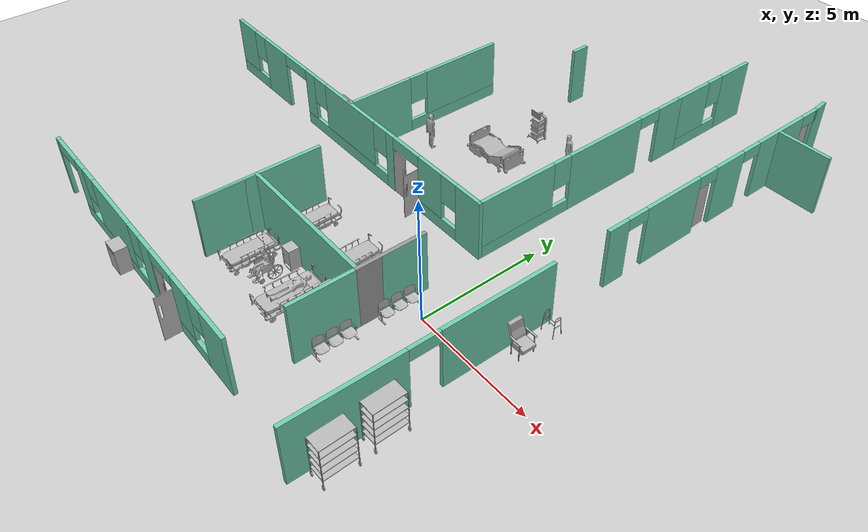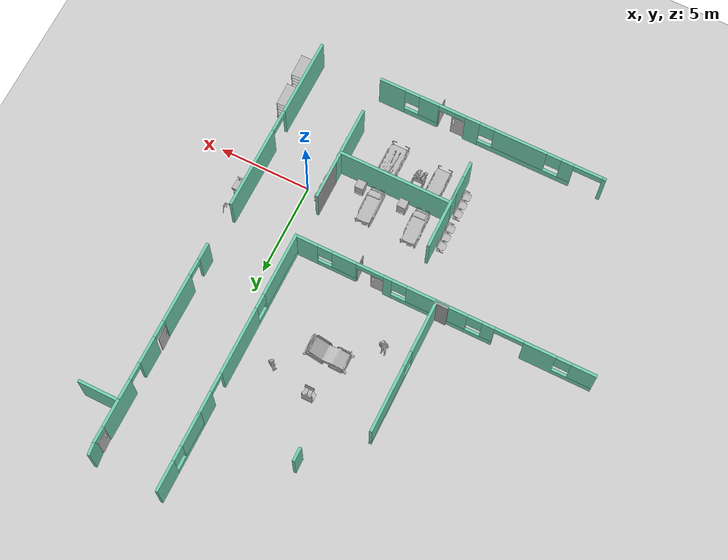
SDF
<sdf version="1.6">
 <world name="default">
  <model name="ground_plane">
   <static>1</static>
   <link name="link">
    <collision name="collision">
     <geometry><plane><normal>0 0 1</normal><size>100 100</size></plane></geometry>
     <surface><friction><ode><mu>100</mu><mu2>50</mu2></ode></friction></surface>
    </collision>
    <visual name="visual">
     <cast_shadows>0</cast_shadows>
     <geometry><plane><normal>0 0 1</normal><size>100 100</size></plane></geometry>
     <material>
      <script><uri>file://media/materials/scripts/gazebo.material</uri><name>Gazebo/Grey</name></script>
     </material>
    </visual>
   </link>
  </model>
  <model name="Hospital_empty">
   <pose>0.7078 0.61575 0 0 -0 0</pose>
   <link name="Wall_13">
    <collision name="Wall_13_Collision">
     <geometry><box><size>0.75 0.15 2.5</size></box></geometry>
     <pose>0 0 1.25 0 -0 0</pose>
    </collision>
    <visual name="Wall_13_Visual">
     <pose>0 0 1.25 0 -0 0</pose>
     <geometry><box><size>0.75 0.15 2.5</size></box></geometry>
     <material>
      <script><uri>file://media/materials/scripts/gazebo.material</uri><name>Gazebo/Grey</name></script>
      <ambient>0.435294 0.796078 0.67451 1</ambient>
     </material>
    </visual>
    <pose>-6.851 12.478 0 0 0 -1.5708</pose>
   </link>
   <link name="Wall_17">
    <pose>-1.797 7.76299 0 0 0 -1.5708</pose>
    <visual name="Wall_17_Visual_0">
     <pose>-4.48744 0 1.25 0 -0 0</pose>
     <geometry><box><size>1.27512 0.15 2.5</size></box></geometry>
     <material>
      <script><uri>file://media/materials/scripts/gazebo.material</uri><name>Gazebo/Grey</name></script>
      <ambient>0.435294 0.796078 0.67451 1</ambient>
     </material>
    </visual>
    <collision name="Wall_17_Collision_0">
     <geometry><box><size>1.27512 0.15 2.5</size></box></geometry>
     <pose>-4.48744 0 1.25 0 -0 0</pose>
    </collision>
    <visual name="Wall_17_Visual_1">
     <pose>-1.00157 0 1.25 0 -0 0</pose>
     <geometry><box><size>3.65689 0.15 2.5</size></box></geometry>
     <material>
      <script><uri>file://media/materials/scripts/gazebo.material</uri><name>Gazebo/Grey</name></script>
      <ambient>0.435294 0.796078 0.67451 1</ambient>
     </material>
    </visual>
    <collision name="Wall_17_Collision_1">
     <geometry><box><size>3.65689 0.15 2.5</size></box></geometry>
     <pose>-1.00157 0 1.25 0 -0 0</pose>
    </collision>
    <visual name="Wall_17_Visual_2">
     <pose>2.97594 0 0.25 0 -0 0</pose>
     <geometry><box><size>4.29813 0.15 0.5</size></box></geometry>
     <material>
      <script><uri>file://media/materials/scripts/gazebo.material</uri><name>Gazebo/Grey</name></script>
      <ambient>0.435294 0.796078 0.67451 1</ambient>
     </material>
    </visual>
    <collision name="Wall_17_Collision_2">
     <geometry><box><size>4.29813 0.15 0.5</size></box></geometry>
     <pose>2.97594 0 0.25 0 -0 0</pose>
    </collision>
    <visual name="Wall_17_Visual_3">
     <pose>3.37594 0 1.5 0 -0 0</pose>
     <geometry><box><size>3.49813 0.15 2</size></box></geometry>
     <material>
      <script><uri>file://media/materials/scripts/gazebo.material</uri><name>Gazebo/Grey</name></script>
      <ambient>0.435294 0.796078 0.67451 1</ambient>
     </material>
    </visual>
    <collision name="Wall_17_Collision_3">
     <geometry><box><size>3.49813 0.15 2</size></box></geometry>
     <pose>3.37594 0 1.5 0 -0 0</pose>
    </collision>
    <visual name="Wall_17_Visual_4">
     <pose>1.22687 0 1.9 0 -0 0</pose>
     <geometry><box><size>0.8 0.15 1.2</size></box></geometry>
     <material>
      <script><uri>file://media/materials/scripts/gazebo.material</uri><name>Gazebo/Grey</name></script>
      <ambient>0.435294 0.796078 0.67451 1</ambient>
     </material>
    </visual>
    <collision name="Wall_17_Collision_4">
     <geometry><box><size>0.8 0.15 1.2</size></box></geometry>
     <pose>1.22687 0 1.9 0 -0 0</pose>
    </collision>
    <visual name="Wall_17_Visual_5">
     <pose>-3.33995 0 2.25 0 -0 0</pose>
     <geometry><box><size>1.01986 0.15 0.5</size></box></geometry>
     <material>
      <script><uri>file://media/materials/scripts/gazebo.material</uri><name>Gazebo/Grey</name></script>
      <ambient>0.435294 0.796078 0.67451 1</ambient>
     </material>
    </visual>
    <collision name="Wall_17_Collision_5">
     <geometry><box><size>1.01986 0.15 0.5</size></box></geometry>
     <pose>-3.33995 0 2.25 0 -0 0</pose>
    </collision>
   </link>
   <link name="Wall_18">
    <pose>-9.847 2.71299 0 0 -0 3.14159</pose>
    <visual name="Wall_18_Visual_0">
     <pose>-7.48508 0 1.25 0 -0 0</pose>
     <geometry><box><size>1.27984 0.15 2.5</size></box></geometry>
     <material>
      <script><uri>file://media/materials/scripts/gazebo.material</uri><name>Gazebo/Grey</name></script>
      <ambient>0.435294 0.796078 0.67451 1</ambient>
     </material>
    </visual>
    <collision name="Wall_18_Collision_0">
     <geometry><box><size>1.27984 0.15 2.5</size></box></geometry>
     <pose>-7.48508 0 1.25 0 -0 0</pose>
    </collision>
    <visual name="Wall_18_Visual_1">
     <pose>-2.99948 0 1.25 0 -0 0</pose>
     <geometry><box><size>0.447791 0.15 2.5</size></box></geometry>
     <material>
      <script><uri>file://media/materials/scripts/gazebo.material</uri><name>Gazebo/Grey</name></script>
      <ambient>0.435294 0.796078 0.67451 1</ambient>
     </material>
    </visual>
    <collision name="Wall_18_Collision_1">
     <geometry><box><size>0.447791 0.15 2.5</size></box></geometry>
     <pose>-2.99948 0 1.25 0 -0 0</pose>
    </collision>
    <visual name="Wall_18_Visual_2">
     <pose>5.13794 0 1.25 0 -0 0</pose>
     <geometry><box><size>1.70338 0.15 2.5</size></box></geometry>
     <material>
      <script><uri>file://media/materials/scripts/gazebo.material</uri><name>Gazebo/Grey</name></script>
      <ambient>0.435294 0.796078 0.67451 1</ambient>
     </material>
    </visual>
    <collision name="Wall_18_Collision_2">
     <geometry><box><size>1.70338 0.15 2.5</size></box></geometry>
     <pose>5.13794 0 1.25 0 -0 0</pose>
    </collision>
    <visual name="Wall_18_Visual_3">
     <pose>-5.78127 0 0.25 0 -0 0</pose>
     <geometry><box><size>2.12777 0.15 0.5</size></box></geometry>
     <material>
      <script><uri>file://media/materials/scripts/gazebo.material</uri><name>Gazebo/Grey</name></script>
      <ambient>0.435294 0.796078 0.67451 1</ambient>
     </material>
    </visual>
    <collision name="Wall_18_Collision_3">
     <geometry><box><size>2.12777 0.15 0.5</size></box></geometry>
     <pose>-5.78127 0 0.25 0 -0 0</pose>
    </collision>
    <visual name="Wall_18_Visual_4">
     <pose>-0.014485 0 0.25 0 -0 0</pose>
     <geometry><box><size>5.52221 0.15 0.5</size></box></geometry>
     <material>
      <script><uri>file://media/materials/scripts/gazebo.material</uri><name>Gazebo/Grey</name></script>
      <ambient>0.435294 0.796078 0.67451 1</ambient>
     </material>
    </visual>
    <collision name="Wall_18_Collision_4">
     <geometry><box><size>5.52221 0.15 0.5</size></box></geometry>
     <pose>-0.014485 0 0.25 0 -0 0</pose>
    </collision>
    <visual name="Wall_18_Visual_5">
     <pose>7.05731 0 0.25 0 -0 0</pose>
     <geometry><box><size>2.13537 0.15 0.5</size></box></geometry>
     <material>
      <script><uri>file://media/materials/scripts/gazebo.material</uri><name>Gazebo/Grey</name></script>
      <ambient>0.435294 0.796078 0.67451 1</ambient>
     </material>
    </visual>
    <collision name="Wall_18_Collision_5">
     <geometry><box><size>2.13537 0.15 0.5</size></box></geometry>
     <pose>7.05731 0 0.25 0 -0 0</pose>
    </collision>
    <visual name="Wall_18_Visual_6">
     <pose>-5.38127 0 1.5 0 -0 0</pose>
     <geometry><box><size>1.32777 0.15 2</size></box></geometry>
     <material>
      <script><uri>file://media/materials/scripts/gazebo.material</uri><name>Gazebo/Grey</name></script>
      <ambient>0.435294 0.796078 0.67451 1</ambient>
     </material>
    </visual>
    <collision name="Wall_18_Collision_6">
     <geometry><box><size>1.32777 0.15 2</size></box></geometry>
     <pose>-5.38127 0 1.5 0 -0 0</pose>
    </collision>
    <visual name="Wall_18_Visual_7">
     <pose>-5.38127 0 1.5 0 -0 0</pose>
     <geometry><box><size>1.32777 0.15 2</size></box></geometry>
     <material>
      <script><uri>file://media/materials/scripts/gazebo.material</uri><name>Gazebo/Grey</name></script>
      <ambient>0.435294 0.796078 0.67451 1</ambient>
     </material>
    </visual>
    <collision name="Wall_18_Collision_7">
     <geometry><box><size>1.32777 0.15 2</size></box></geometry>
     <pose>-5.38127 0 1.5 0 -0 0</pose>
    </collision>
    <visual name="Wall_18_Visual_8">
     <pose>-0.340807 0 1.5 0 -0 0</pose>
     <geometry><box><size>3.26957 0.15 2</size></box></geometry>
     <material>
      <script><uri>file://media/materials/scripts/gazebo.material</uri><name>Gazebo/Grey</name></script>
      <ambient>0.435294 0.796078 0.67451 1</ambient>
     </material>
    </visual>
    <collision name="Wall_18_Collision_8">
     <geometry><box><size>3.26957 0.15 2</size></box></geometry>
     <pose>-0.340807 0 1.5 0 -0 0</pose>
    </collision>
    <visual name="Wall_18_Visual_9">
     <pose>2.4203 0 1.5 0 -0 0</pose>
     <geometry><box><size>0.652644 0.15 2</size></box></geometry>
     <material>
      <script><uri>file://media/materials/scripts/gazebo.material</uri><name>Gazebo/Grey</name></script>
      <ambient>0.435294 0.796078 0.67451 1</ambient>
     </material>
    </visual>
    <collision name="Wall_18_Collision_9">
     <geometry><box><size>0.652644 0.15 2</size></box></geometry>
     <pose>2.4203 0 1.5 0 -0 0</pose>
    </collision>
    <visual name="Wall_18_Visual_10">
     <pose>2.4203 0 1.5 0 -0 0</pose>
     <geometry><box><size>0.652644 0.15 2</size></box></geometry>
     <material>
      <script><uri>file://media/materials/scripts/gazebo.material</uri><name>Gazebo/Grey</name></script>
      <ambient>0.435294 0.796078 0.67451 1</ambient>
     </material>
    </visual>
    <collision name="Wall_18_Collision_10">
     <geometry><box><size>0.652644 0.15 2</size></box></geometry>
     <pose>2.4203 0 1.5 0 -0 0</pose>
    </collision>
    <visual name="Wall_18_Visual_11">
     <pose>7.45731 0 1.5 0 -0 0</pose>
     <geometry><box><size>1.33537 0.15 2</size></box></geometry>
     <material>
      <script><uri>file://media/materials/scripts/gazebo.material</uri><name>Gazebo/Grey</name></script>
      <ambient>0.435294 0.796078 0.67451 1</ambient>
     </material>
    </visual>
    <collision name="Wall_18_Collision_11">
     <geometry><box><size>1.33537 0.15 2</size></box></geometry>
     <pose>7.45731 0 1.5 0 -0 0</pose>
    </collision>
    <visual name="Wall_18_Visual_12">
     <pose>-6.44515 0 1.9 0 -0 0</pose>
     <geometry><box><size>0.8 0.15 1.2</size></box></geometry>
     <material>
      <script><uri>file://media/materials/scripts/gazebo.material</uri><name>Gazebo/Grey</name></script>
      <ambient>0.435294 0.796078 0.67451 1</ambient>
     </material>
    </visual>
    <collision name="Wall_18_Collision_12">
     <geometry><box><size>0.8 0.15 1.2</size></box></geometry>
     <pose>-6.44515 0 1.9 0 -0 0</pose>
    </collision>
    <visual name="Wall_18_Visual_13">
     <pose>-2.37559 0 1.9 0 -0 0</pose>
     <geometry><box><size>0.8 0.15 1.2</size></box></geometry>
     <material>
      <script><uri>file://media/materials/scripts/gazebo.material</uri><name>Gazebo/Grey</name></script>
      <ambient>0.435294 0.796078 0.67451 1</ambient>
     </material>
    </visual>
    <collision name="Wall_18_Collision_13">
     <geometry><box><size>0.8 0.15 1.2</size></box></geometry>
     <pose>-2.37559 0 1.9 0 -0 0</pose>
    </collision>
    <visual name="Wall_18_Visual_14">
     <pose>6.38963 0 1.9 0 -0 0</pose>
     <geometry><box><size>0.8 0.15 1.2</size></box></geometry>
     <material>
      <script><uri>file://media/materials/scripts/gazebo.material</uri><name>Gazebo/Grey</name></script>
      <ambient>0.435294 0.796078 0.67451 1</ambient>
     </material>
    </visual>
    <collision name="Wall_18_Collision_14">
     <geometry><box><size>0.8 0.15 1.2</size></box></geometry>
     <pose>6.38963 0 1.9 0 -0 0</pose>
    </collision>
    <visual name="Wall_18_Visual_15">
     <pose>1.69398 0 1.9 0 -0 0</pose>
     <geometry><box><size>0.8 0.15 1.2</size></box></geometry>
     <material>
      <script><uri>file://media/materials/scripts/gazebo.material</uri><name>Gazebo/Grey</name></script>
      <ambient>0.435294 0.796078 0.67451 1</ambient>
     </material>
    </visual>
    <collision name="Wall_18_Collision_15">
     <geometry><box><size>0.8 0.15 1.2</size></box></geometry>
     <pose>1.69398 0 1.9 0 -0 0</pose>
    </collision>
    <visual name="Wall_18_Visual_16">
     <pose>-3.97038 0 2.25 0 -0 0</pose>
     <geometry><box><size>1.494 0.15 0.5</size></box></geometry>
     <material>
      <script><uri>file://media/materials/scripts/gazebo.material</uri><name>Gazebo/Grey</name></script>
      <ambient>0.435294 0.796078 0.67451 1</ambient>
     </material>
    </visual>
    <collision name="Wall_18_Collision_16">
     <geometry><box><size>1.494 0.15 0.5</size></box></geometry>
     <pose>-3.97038 0 2.25 0 -0 0</pose>
    </collision>
    <visual name="Wall_18_Visual_17">
     <pose>-3.97038 0 2.25 0 -0 0</pose>
     <geometry><box><size>1.494 0.15 0.5</size></box></geometry>
     <material>
      <script><uri>file://media/materials/scripts/gazebo.material</uri><name>Gazebo/Grey</name></script>
      <ambient>0.435294 0.796078 0.67451 1</ambient>
     </material>
    </visual>
    <collision name="Wall_18_Collision_17">
     <geometry><box><size>1.494 0.15 0.5</size></box></geometry>
     <pose>-3.97038 0 2.25 0 -0 0</pose>
    </collision>
    <visual name="Wall_18_Visual_18">
     <pose>3.51643 0 2.25 0 -0 0</pose>
     <geometry><box><size>1.53963 0.15 0.5</size></box></geometry>
     <material>
      <script><uri>file://media/materials/scripts/gazebo.material</uri><name>Gazebo/Grey</name></script>
      <ambient>0.435294 0.796078 0.67451 1</ambient>
     </material>
    </visual>
    <collision name="Wall_18_Collision_18">
     <geometry><box><size>1.53963 0.15 0.5</size></box></geometry>
     <pose>3.51643 0 2.25 0 -0 0</pose>
    </collision>
    <visual name="Wall_18_Visual_19">
     <pose>3.51643 0 2.25 0 -0 0</pose>
     <geometry><box><size>1.53963 0.15 0.5</size></box></geometry>
     <material>
      <script><uri>file://media/materials/scripts/gazebo.material</uri><name>Gazebo/Grey</name></script>
      <ambient>0.435294 0.796078 0.67451 1</ambient>
     </material>
    </visual>
    <collision name="Wall_18_Collision_19">
     <geometry><box><size>1.53963 0.15 0.5</size></box></geometry>
     <pose>3.51643 0 2.25 0 -0 0</pose>
    </collision>
   </link>
   <link name="Wall_22">
    <collision name="Wall_22_Collision">
     <geometry><box><size>0.75 0.15 2.5</size></box></geometry>
     <pose>0 0 1.25 0 -0 0</pose>
    </collision>
    <visual name="Wall_22_Visual">
     <pose>0 0 1.25 0 -0 0</pose>
     <geometry><box><size>0.75 0.15 2.5</size></box></geometry>
     <material>
      <script><uri>file://media/materials/scripts/gazebo.material</uri><name>Gazebo/Grey</name></script>
      <ambient>1 1 1 1</ambient>
     </material>
    </visual>
    <pose>-9.775 2.78799 0 0 -0 0</pose>
   </link>
   <link name="Wall_23">
    <pose>-9.475 6.33799 0 0 -0 1.5708</pose>
    <visual name="Wall_23_Visual_0">
     <pose>-2.20031 0 1.25 0 -0 0</pose>
     <geometry><box><size>2.84938 0.15 2.5</size></box></geometry>
     <material>
      <script><uri>file://media/materials/scripts/gazebo.material</uri><name>Gazebo/Grey</name></script>
      <ambient>0.435294 0.796078 0.67451 1</ambient>
     </material>
    </visual>
    <collision name="Wall_23_Collision_0">
     <geometry><box><size>2.84938 0.15 2.5</size></box></geometry>
     <pose>-2.20031 0 1.25 0 -0 0</pose>
    </collision>
    <visual name="Wall_23_Visual_1">
     <pose>1.42469 0 0.25 0 -0 0</pose>
     <geometry><box><size>4.40062 0.15 0.5</size></box></geometry>
     <material>
      <script><uri>file://media/materials/scripts/gazebo.material</uri><name>Gazebo/Grey</name></script>
      <ambient>0.435294 0.796078 0.67451 1</ambient>
     </material>
    </visual>
    <collision name="Wall_23_Collision_1">
     <geometry><box><size>4.40062 0.15 0.5</size></box></geometry>
     <pose>1.42469 0 0.25 0 -0 0</pose>
    </collision>
    <visual name="Wall_23_Visual_2">
     <pose>1.82469 0 1.5 0 -0 0</pose>
     <geometry><box><size>3.60062 0.15 2</size></box></geometry>
     <material>
      <script><uri>file://media/materials/scripts/gazebo.material</uri><name>Gazebo/Grey</name></script>
      <ambient>0.435294 0.796078 0.67451 1</ambient>
     </material>
    </visual>
    <collision name="Wall_23_Collision_2">
     <geometry><box><size>3.60062 0.15 2</size></box></geometry>
     <pose>1.82469 0 1.5 0 -0 0</pose>
    </collision>
    <visual name="Wall_23_Visual_3">
     <pose>-0.375624 0 1.9 0 -0 0</pose>
     <geometry><box><size>0.8 0.15 1.2</size></box></geometry>
     <material>
      <script><uri>file://media/materials/scripts/gazebo.material</uri><name>Gazebo/Grey</name></script>
      <ambient>0.435294 0.796078 0.67451 1</ambient>
     </material>
    </visual>
    <collision name="Wall_23_Collision_3">
     <geometry><box><size>0.8 0.15 1.2</size></box></geometry>
     <pose>-0.375624 0 1.9 0 -0 0</pose>
    </collision>
   </link>
   <link name="Wall_31">
    <pose>-8.05 -6.82701 0 0 -0 3.14159</pose>
    <visual name="Wall_31_Visual_0">
     <pose>-5.55699 0 1.25 0 -0 0</pose>
     <geometry><box><size>1.43602 0.15 2.5</size></box></geometry>
     <material>
      <script><uri>file://media/materials/scripts/gazebo.material</uri><name>Gazebo/Grey</name></script>
      <ambient>0.435294 0.796078 0.67451 1</ambient>
     </material>
    </visual>
    <collision name="Wall_31_Collision_0">
     <geometry><box><size>1.43602 0.15 2.5</size></box></geometry>
     <pose>-5.55699 0 1.25 0 -0 0</pose>
    </collision>
    <visual name="Wall_31_Visual_1">
     <pose>-1.06729 0 1.25 0 -0 0</pose>
     <geometry><box><size>0.804786 0.15 2.5</size></box></geometry>
     <material>
      <script><uri>file://media/materials/scripts/gazebo.material</uri><name>Gazebo/Grey</name></script>
      <ambient>0.435294 0.796078 0.67451 1</ambient>
     </material>
    </visual>
    <collision name="Wall_31_Collision_1">
     <geometry><box><size>0.804786 0.15 2.5</size></box></geometry>
     <pose>-1.06729 0 1.25 0 -0 0</pose>
    </collision>
    <visual name="Wall_31_Visual_2">
     <pose>6.1767 0 1.25 0 -0 0</pose>
     <geometry><box><size>0.196605 0.15 2.5</size></box></geometry>
     <material>
      <script><uri>file://media/materials/scripts/gazebo.material</uri><name>Gazebo/Grey</name></script>
      <ambient>0.435294 0.796078 0.67451 1</ambient>
     </material>
    </visual>
    <collision name="Wall_31_Collision_2">
     <geometry><box><size>0.196605 0.15 2.5</size></box></geometry>
     <pose>6.1767 0 1.25 0 -0 0</pose>
    </collision>
    <visual name="Wall_31_Visual_3">
     <pose>-3.8954 0 0.25 0 -0 0</pose>
     <geometry><box><size>1.88718 0.15 0.5</size></box></geometry>
     <material>
      <script><uri>file://media/materials/scripts/gazebo.material</uri><name>Gazebo/Grey</name></script>
      <ambient>0.435294 0.796078 0.67451 1</ambient>
     </material>
    </visual>
    <collision name="Wall_31_Collision_3">
     <geometry><box><size>1.88718 0.15 0.5</size></box></geometry>
     <pose>-3.8954 0 0.25 0 -0 0</pose>
    </collision>
    <visual name="Wall_31_Visual_4">
     <pose>1.93145 0 0.25 0 -0 0</pose>
     <geometry><box><size>5.19268 0.15 0.5</size></box></geometry>
     <material>
      <script><uri>file://media/materials/scripts/gazebo.material</uri><name>Gazebo/Grey</name></script>
      <ambient>0.435294 0.796078 0.67451 1</ambient>
     </material>
    </visual>
    <collision name="Wall_31_Collision_4">
     <geometry><box><size>5.19268 0.15 0.5</size></box></geometry>
     <pose>1.93145 0 0.25 0 -0 0</pose>
    </collision>
    <visual name="Wall_31_Visual_5">
     <pose>-3.49539 0 1.5 0 -0 0</pose>
     <geometry><box><size>1.08718 0.15 2</size></box></geometry>
     <material>
      <script><uri>file://media/materials/scripts/gazebo.material</uri><name>Gazebo/Grey</name></script>
      <ambient>0.435294 0.796078 0.67451 1</ambient>
     </material>
    </visual>
    <collision name="Wall_31_Collision_5">
     <geometry><box><size>1.08718 0.15 2</size></box></geometry>
     <pose>-3.49539 0 1.5 0 -0 0</pose>
    </collision>
    <visual name="Wall_31_Visual_6">
     <pose>-3.49539 0 1.5 0 -0 0</pose>
     <geometry><box><size>1.08718 0.15 2</size></box></geometry>
     <material>
      <script><uri>file://media/materials/scripts/gazebo.material</uri><name>Gazebo/Grey</name></script>
      <ambient>0.435294 0.796078 0.67451 1</ambient>
     </material>
    </visual>
    <collision name="Wall_31_Collision_6">
     <geometry><box><size>1.08718 0.15 2</size></box></geometry>
     <pose>-3.49539 0 1.5 0 -0 0</pose>
    </collision>
    <visual name="Wall_31_Visual_7">
     <pose>1.58719 0 1.5 0 -0 0</pose>
     <geometry><box><size>2.90417 0.15 2</size></box></geometry>
     <material>
      <script><uri>file://media/materials/scripts/gazebo.material</uri><name>Gazebo/Grey</name></script>
      <ambient>0.435294 0.796078 0.67451 1</ambient>
     </material>
    </visual>
    <collision name="Wall_31_Collision_7">
     <geometry><box><size>2.90417 0.15 2</size></box></geometry>
     <pose>1.58719 0 1.5 0 -0 0</pose>
    </collision>
    <visual name="Wall_31_Visual_8">
     <pose>4.18353 0 1.5 0 -0 0</pose>
     <geometry><box><size>0.688507 0.15 2</size></box></geometry>
     <material>
      <script><uri>file://media/materials/scripts/gazebo.material</uri><name>Gazebo/Grey</name></script>
      <ambient>0.435294 0.796078 0.67451 1</ambient>
     </material>
    </visual>
    <collision name="Wall_31_Collision_8">
     <geometry><box><size>0.688507 0.15 2</size></box></geometry>
     <pose>4.18353 0 1.5 0 -0 0</pose>
    </collision>
    <visual name="Wall_31_Visual_9">
     <pose>-4.43898 0 1.9 0 -0 0</pose>
     <geometry><box><size>0.8 0.15 1.2</size></box></geometry>
     <material>
      <script><uri>file://media/materials/scripts/gazebo.material</uri><name>Gazebo/Grey</name></script>
      <ambient>0.435294 0.796078 0.67451 1</ambient>
     </material>
    </visual>
    <collision name="Wall_31_Collision_9">
     <geometry><box><size>0.8 0.15 1.2</size></box></geometry>
     <pose>-4.43898 0 1.9 0 -0 0</pose>
    </collision>
    <visual name="Wall_31_Visual_10">
     <pose>-0.264895 0 1.9 0 -0 0</pose>
     <geometry><box><size>0.8 0.15 1.2</size></box></geometry>
     <material>
      <script><uri>file://media/materials/scripts/gazebo.material</uri><name>Gazebo/Grey</name></script>
      <ambient>0.435294 0.796078 0.67451 1</ambient>
     </material>
    </visual>
    <collision name="Wall_31_Collision_10">
     <geometry><box><size>0.8 0.15 1.2</size></box></geometry>
     <pose>-0.264895 0 1.9 0 -0 0</pose>
    </collision>
    <visual name="Wall_31_Visual_11">
     <pose>3.43928 0 1.9 0 -0 0</pose>
     <geometry><box><size>0.8 0.15 1.2</size></box></geometry>
     <material>
      <script><uri>file://media/materials/scripts/gazebo.material</uri><name>Gazebo/Grey</name></script>
      <ambient>0.435294 0.796078 0.67451 1</ambient>
     </material>
    </visual>
    <collision name="Wall_31_Collision_11">
     <geometry><box><size>0.8 0.15 1.2</size></box></geometry>
     <pose>3.43928 0 1.9 0 -0 0</pose>
    </collision>
    <visual name="Wall_31_Visual_12">
     <pose>-2.21074 0 2.25 0 -0 0</pose>
     <geometry><box><size>1.48212 0.15 0.5</size></box></geometry>
     <material>
      <script><uri>file://media/materials/scripts/gazebo.material</uri><name>Gazebo/Grey</name></script>
      <ambient>0.435294 0.796078 0.67451 1</ambient>
     </material>
    </visual>
    <collision name="Wall_31_Collision_12">
     <geometry><box><size>1.48212 0.15 0.5</size></box></geometry>
     <pose>-2.21074 0 2.25 0 -0 0</pose>
    </collision>
    <visual name="Wall_31_Visual_13">
     <pose>-2.21074 0 2.25 0 -0 0</pose>
     <geometry><box><size>1.48212 0.15 0.5</size></box></geometry>
     <material>
      <script><uri>file://media/materials/scripts/gazebo.material</uri><name>Gazebo/Grey</name></script>
      <ambient>0.435294 0.796078 0.67451 1</ambient>
     </material>
    </visual>
    <collision name="Wall_31_Collision_13">
     <geometry><box><size>1.48212 0.15 0.5</size></box></geometry>
     <pose>-2.21074 0 2.25 0 -0 0</pose>
    </collision>
    <visual name="Wall_31_Visual_14">
     <pose>5.30309 0 2.25 0 -0 0</pose>
     <geometry><box><size>1.55061 0.15 0.5</size></box></geometry>
     <material>
      <script><uri>file://media/materials/scripts/gazebo.material</uri><name>Gazebo/Grey</name></script>
      <ambient>0.435294 0.796078 0.67451 1</ambient>
     </material>
    </visual>
    <collision name="Wall_31_Collision_14">
     <geometry><box><size>1.55061 0.15 0.5</size></box></geometry>
     <pose>5.30309 0 2.25 0 -0 0</pose>
    </collision>
   </link>
   <link name="Wall_4">
    <pose>-1.797 14.863 0 0 0 -1.5708</pose>
    <visual name="Wall_4_Visual_0">
     <pose>-1.30929 0 1.25 0 -0 0</pose>
     <geometry><box><size>1.63142 0.15 2.5</size></box></geometry>
     <material>
      <script><uri>file://media/materials/scripts/gazebo.material</uri><name>Gazebo/Grey</name></script>
      <ambient>0.435294 0.796078 0.67451 1</ambient>
     </material>
    </visual>
    <collision name="Wall_4_Collision_0">
     <geometry><box><size>1.63142 0.15 2.5</size></box></geometry>
     <pose>-1.30929 0 1.25 0 -0 0</pose>
    </collision>
    <visual name="Wall_4_Visual_1">
     <pose>0.815712 0 0.25 0 -0 0</pose>
     <geometry><box><size>2.61857 0.15 0.5</size></box></geometry>
     <material>
      <script><uri>file://media/materials/scripts/gazebo.material</uri><name>Gazebo/Grey</name></script>
      <ambient>0.435294 0.796078 0.67451 1</ambient>
     </material>
    </visual>
    <collision name="Wall_4_Collision_1">
     <geometry><box><size>2.61857 0.15 0.5</size></box></geometry>
     <pose>0.815712 0 0.25 0 -0 0</pose>
    </collision>
    <visual name="Wall_4_Visual_2">
     <pose>1.21571 0 1.5 0 -0 0</pose>
     <geometry><box><size>1.81858 0.15 2</size></box></geometry>
     <material>
      <script><uri>file://media/materials/scripts/gazebo.material</uri><name>Gazebo/Grey</name></script>
      <ambient>0.435294 0.796078 0.67451 1</ambient>
     </material>
    </visual>
    <collision name="Wall_4_Collision_2">
     <geometry><box><size>1.81858 0.15 2</size></box></geometry>
     <pose>1.21571 0 1.5 0 -0 0</pose>
    </collision>
    <visual name="Wall_4_Visual_3">
     <pose>-0.093575 0 1.9 0 -0 0</pose>
     <geometry><box><size>0.8 0.15 1.2</size></box></geometry>
     <material>
      <script><uri>file://media/materials/scripts/gazebo.material</uri><name>Gazebo/Grey</name></script>
      <ambient>0.435294 0.796078 0.67451 1</ambient>
     </material>
    </visual>
    <collision name="Wall_4_Collision_3">
     <geometry><box><size>0.8 0.15 1.2</size></box></geometry>
     <pose>-0.093575 0 1.9 0 -0 0</pose>
    </collision>
   </link>
   <link name="Wall_58">
    <pose>1.92588 10.6481 0 0 -0 1.56411</pose>
    <visual name="Wall_58_Visual_0">
     <pose>-5.15743 0 1.25 0 -0 0</pose>
     <geometry><box><size>0.935146 0.15 2.5</size></box></geometry>
     <material>
      <script><uri>file://media/materials/scripts/gazebo.material</uri><name>Gazebo/Grey</name></script>
      <ambient>0.435294 0.796078 0.67451 1</ambient>
     </material>
    </visual>
    <collision name="Wall_58_Collision_0">
     <geometry><box><size>0.935146 0.15 2.5</size></box></geometry>
     <pose>-5.15743 0 1.25 0 -0 0</pose>
    </collision>
    <visual name="Wall_58_Visual_1">
     <pose>-2.46295 0 1.25 0 -0 0</pose>
     <geometry><box><size>2.6538 0.15 2.5</size></box></geometry>
     <material>
      <script><uri>file://media/materials/scripts/gazebo.material</uri><name>Gazebo/Grey</name></script>
      <ambient>0.435294 0.796078 0.67451 1</ambient>
     </material>
    </visual>
    <collision name="Wall_58_Collision_1">
     <geometry><box><size>2.6538 0.15 2.5</size></box></geometry>
     <pose>-2.46295 0 1.25 0 -0 0</pose>
    </collision>
    <visual name="Wall_58_Visual_2">
     <pose>0.505501 0 1.25 0 -0 0</pose>
     <geometry><box><size>1.48311 0.15 2.5</size></box></geometry>
     <material>
      <script><uri>file://media/materials/scripts/gazebo.material</uri><name>Gazebo/Grey</name></script>
      <ambient>0.435294 0.796078 0.67451 1</ambient>
     </material>
    </visual>
    <collision name="Wall_58_Collision_2">
     <geometry><box><size>1.48311 0.15 2.5</size></box></geometry>
     <pose>0.505501 0 1.25 0 -0 0</pose>
    </collision>
    <visual name="Wall_58_Visual_3">
     <pose>3.44758 0 1.25 0 -0 0</pose>
     <geometry><box><size>2.60106 0.15 2.5</size></box></geometry>
     <material>
      <script><uri>file://media/materials/scripts/gazebo.material</uri><name>Gazebo/Grey</name></script>
      <ambient>0.435294 0.796078 0.67451 1</ambient>
     </material>
    </visual>
    <collision name="Wall_58_Collision_3">
     <geometry><box><size>2.60106 0.15 2.5</size></box></geometry>
     <pose>3.44758 0 1.25 0 -0 0</pose>
    </collision>
    <visual name="Wall_58_Visual_4">
     <pose>-4.23985 0 2.25 0 -0 0</pose>
     <geometry><box><size>0.9 0.15 0.5</size></box></geometry>
     <material>
      <script><uri>file://media/materials/scripts/gazebo.material</uri><name>Gazebo/Grey</name></script>
      <ambient>0.435294 0.796078 0.67451 1</ambient>
     </material>
    </visual>
    <collision name="Wall_58_Collision_4">
     <geometry><box><size>0.9 0.15 0.5</size></box></geometry>
     <pose>-4.23985 0 2.25 0 -0 0</pose>
    </collision>
    <visual name="Wall_58_Visual_5">
     <pose>-0.686052 0 2.25 0 -0 0</pose>
     <geometry><box><size>0.9 0.15 0.5</size></box></geometry>
     <material>
      <script><uri>file://media/materials/scripts/gazebo.material</uri><name>Gazebo/Grey</name></script>
      <ambient>0.435294 0.796078 0.67451 1</ambient>
     </material>
    </visual>
    <collision name="Wall_58_Collision_5">
     <geometry><box><size>0.9 0.15 0.5</size></box></geometry>
     <pose>-0.686052 0 2.25 0 -0 0</pose>
    </collision>
    <visual name="Wall_58_Visual_6">
     <pose>1.69705 0 2.25 0 -0 0</pose>
     <geometry><box><size>0.9 0.15 0.5</size></box></geometry>
     <material>
      <script><uri>file://media/materials/scripts/gazebo.material</uri><name>Gazebo/Grey</name></script>
      <ambient>0.435294 0.796078 0.67451 1</ambient>
     </material>
    </visual>
    <collision name="Wall_58_Collision_6">
     <geometry><box><size>0.9 0.15 0.5</size></box></geometry>
     <pose>1.69705 0 2.25 0 -0 0</pose>
    </collision>
    <visual name="Wall_58_Visual_7">
     <pose>5.18656 0 2.25 0 -0 0</pose>
     <geometry><box><size>0.876889 0.15 0.5</size></box></geometry>
     <material>
      <script><uri>file://media/materials/scripts/gazebo.material</uri><name>Gazebo/Grey</name></script>
      <ambient>0.435294 0.796078 0.67451 1</ambient>
     </material>
    </visual>
    <collision name="Wall_58_Collision_7">
     <geometry><box><size>0.876889 0.15 0.5</size></box></geometry>
     <pose>5.18656 0 2.25 0 -0 0</pose>
    </collision>
   </link>
   <link name="Wall_59">
    <collision name="Wall_59_Collision">
     <geometry><box><size>0.777983 0.15 2.5</size></box></geometry>
     <pose>0 0 1.25 0 -0 0</pose>
    </collision>
    <visual name="Wall_59_Visual">
     <pose>0 0 1.25 0 -0 0</pose>
     <geometry><box><size>0.777983 0.15 2.5</size></box></geometry>
     <material>
      <script><uri>file://media/materials/scripts/gazebo.material</uri><name>Gazebo/Grey</name></script>
      <ambient>0.435294 0.796078 0.67451 1</ambient>
     </material>
    </visual>
    <pose>1.9315 16.5105 0 0 -0 1.67126</pose>
   </link>
   <link name="Wall_70">
    <pose>1.82005 -2.28205 0 0 0 -1.57938</pose>
    <visual name="Wall_70_Visual_0">
     <pose>-2.71953 0 1.25 0 -0 0</pose>
     <geometry><box><size>4.50523 0.15 2.5</size></box></geometry>
     <material>
      <script><uri>file://media/materials/scripts/gazebo.material</uri><name>Gazebo/Grey</name></script>
      <ambient>0.435294 0.796078 0.67451 1</ambient>
     </material>
    </visual>
    <collision name="Wall_70_Collision_0">
     <geometry><box><size>4.50523 0.15 2.5</size></box></geometry>
     <pose>-2.71953 0 1.25 0 -0 0</pose>
    </collision>
    <visual name="Wall_70_Visual_1">
     <pose>2.84817 0 1.25 0 -0 0</pose>
     <geometry><box><size>4.24795 0.15 2.5</size></box></geometry>
     <material>
      <script><uri>file://media/materials/scripts/gazebo.material</uri><name>Gazebo/Grey</name></script>
      <ambient>0.435294 0.796078 0.67451 1</ambient>
     </material>
    </visual>
    <collision name="Wall_70_Collision_1">
     <geometry><box><size>4.24795 0.15 2.5</size></box></geometry>
     <pose>2.84817 0 1.25 0 -0 0</pose>
    </collision>
    <visual name="Wall_70_Visual_2">
     <pose>0.128641 0 2.25 0 -0 0</pose>
     <geometry><box><size>1.19111 0.15 0.5</size></box></geometry>
     <material>
      <script><uri>file://media/materials/scripts/gazebo.material</uri><name>Gazebo/Grey</name></script>
      <ambient>0.435294 0.796078 0.67451 1</ambient>
     </material>
    </visual>
    <collision name="Wall_70_Collision_2">
     <geometry><box><size>1.19111 0.15 0.5</size></box></geometry>
     <pose>0.128641 0 2.25 0 -0 0</pose>
    </collision>
   </link>
   <link name="Wall_86">
    <collision name="Wall_86_Collision">
     <geometry><box><size>5 0.15 2.5</size></box></geometry>
     <pose>0 0 1.25 0 -0 0</pose>
    </collision>
    <visual name="Wall_86_Visual">
     <pose>0 0 1.25 0 -0 0</pose>
     <geometry><box><size>5 0.15 2.5</size></box></geometry>
     <material>
      <script><uri>file://media/materials/scripts/gazebo.material</uri><name>Gazebo/Grey</name></script>
      <ambient>0.435294 0.796078 0.67451 1</ambient>
     </material>
    </visual>
    <pose>-7.874 -2.18301 0 0 0 -1.5708</pose>
   </link>
   <link name="Wall_87">
    <collision name="Wall_87_Collision">
     <geometry><box><size>2.5 0.15 2.5</size></box></geometry>
     <pose>0 0 1.25 0 -0 0</pose>
    </collision>
    <visual name="Wall_87_Visual">
     <pose>0 0 1.25 0 -0 0</pose>
     <geometry><box><size>2.5 0.15 2.5</size></box></geometry>
     <material>
      <script><uri>file://media/materials/scripts/gazebo.material</uri><name>Gazebo/Grey</name></script>
      <ambient>0.435294 0.796078 0.67451 1</ambient>
     </material>
    </visual>
    <pose>-7.874 -3.43301 0 0 -0 1.5708</pose>
   </link>
   <link name="Wall_88">
    <collision name="Wall_88_Collision">
     <geometry><box><size>6.25 0.15 2.5</size></box></geometry>
     <pose>0 0 1.25 0 -0 0</pose>
    </collision>
    <visual name="Wall_88_Visual">
     <pose>0 0 1.25 0 -0 0</pose>
     <geometry><box><size>6.25 0.15 2.5</size></box></geometry>
     <material>
      <script><uri>file://media/materials/scripts/gazebo.material</uri><name>Gazebo/Grey</name></script>
      <ambient>0.435294 0.796078 0.67451 1</ambient>
     </material>
    </visual>
    <pose>-4.824 -2.25801 0 0 -0 0</pose>
   </link>
   <link name="Wall_89">
    <collision name="Wall_89_Collision">
     <geometry><box><size>2.75 0.15 2.5</size></box></geometry>
     <pose>0 0 1.25 0 -0 0</pose>
    </collision>
    <visual name="Wall_89_Visual">
     <pose>0 0 1.25 0 -0 0</pose>
     <geometry><box><size>2.75 0.15 2.5</size></box></geometry>
     <material>
      <script><uri>file://media/materials/scripts/gazebo.material</uri><name>Gazebo/Grey</name></script>
      <ambient>1 1 1 1</ambient>
     </material>
    </visual>
    <pose>-1.774 -0.958012 0 0 -0 1.5708</pose>
   </link>
   <link name="Wall_90">
    <collision name="Wall_90_Collision">
     <geometry><box><size>5.25 0.15 2.5</size></box></geometry>
     <pose>0 0 1.25 0 -0 0</pose>
    </collision>
    <visual name="Wall_90_Visual">
     <pose>0 0 1.25 0 -0 0</pose>
     <geometry><box><size>5.25 0.15 2.5</size></box></geometry>
     <material>
      <script><uri>file://media/materials/scripts/gazebo.material</uri><name>Gazebo/Grey</name></script>
      <ambient>0.435294 0.796078 0.67451 1</ambient>
     </material>
    </visual>
    <pose>-1.774 -2.20801 0 0 0 -1.5708</pose>
   </link>
   <link name="Wall_97">
    <collision name="Wall_97_Collision">
     <geometry><box><size>2.25 0.15 2.5</size></box></geometry>
     <pose>0 0 1.25 0 -0 0</pose>
    </collision>
    <visual name="Wall_97_Visual">
     <pose>0 0 1.25 0 -0 0</pose>
     <geometry><box><size>2.25 0.15 2.5</size></box></geometry>
     <material>
      <script><uri>file://media/materials/scripts/gazebo.material</uri><name>Gazebo/Grey</name></script>
      <ambient>0.435294 0.796078 0.67451 1</ambient>
     </material>
    </visual>
    <pose>3.002 13.938 0 0 -0 0</pose>
   </link>
   <static>1</static>
  </model>
  <model name="OpScrubs_2">
   <static>1</static>
   <link name="body">
    <visual name="visual">
     <geometry><mesh><uri>model://OpScrubs/meshes/OpScrubs.obj</uri></mesh></geometry>
    </visual>
    <collision name="collision">
     <geometry><mesh><uri>model://OpScrubs/meshes/OpScrubs_Col.obj</uri></mesh></geometry>
    </collision>
   </link>
   <pose>-7.29876 6.10915 0 0 0 -3.05914</pose>
  </model>
  <model name="OpScrubs_3">
   <static>1</static>
   <link name="body">
    <visual name="visual">
     <geometry><mesh><uri>model://OpScrubs/meshes/OpScrubs.obj</uri></mesh></geometry>
    </visual>
    <collision name="collision">
     <geometry><mesh><uri>model://OpScrubs/meshes/OpScrubs_Col.obj</uri></mesh></geometry>
    </collision>
   </link>
   <pose>-2.81913 9.28288 0 0 0 -0.380709</pose>
  </model>
  <model name="TrolleyBedPatient">
   <static>1</static>
   <link name="body">
    <visual name="visual">
     <geometry><mesh><uri>model://TrolleyBedPatient/meshes/TrolleyBedPatient.obj</uri></mesh></geometry>
    </visual>
    <collision name="collision">
     <geometry><mesh><uri>model://TrolleyBedPatient/meshes/TrolleyBedPatient.obj</uri></mesh></geometry>
    </collision>
   </link>
   <pose>-3.3154 -2.93022 0 0 -0 0</pose>
  </model>
  <model name="BedsideTable2">
   <static>1</static>
   <link name="body">
    <visual name="visual">
     <geometry><mesh><uri>model://BedsideTable2/meshes/BedsideTable2.obj</uri></mesh></geometry>
    </visual>
    <collision name="collision">
     <geometry><mesh><uri>model://BedsideTable2/meshes/BedsideTable2_Col.obj</uri></mesh></geometry>
    </collision>
   </link>
   <pose>-2.42002 -1.95338 0 0 -0 0</pose>
  </model>
  <model name="BedsideTable2_0">
   <static>1</static>
   <link name="body">
    <visual name="visual">
     <geometry><mesh><uri>model://BedsideTable2/meshes/BedsideTable2.obj</uri></mesh></geometry>
    </visual>
    <collision name="collision">
     <geometry><mesh><uri>model://BedsideTable2/meshes/BedsideTable2_Col.obj</uri></mesh></geometry>
    </collision>
   </link>
   <pose>-4.80174 -1.92772 0 0 -0 0</pose>
  </model>
  <model name="BedsideTable2_1">
   <static>1</static>
   <link name="body">
    <visual name="visual">
     <geometry><mesh><uri>model://BedsideTable2/meshes/BedsideTable2.obj</uri></mesh></geometry>
    </visual>
    <collision name="collision">
     <geometry><mesh><uri>model://BedsideTable2/meshes/BedsideTable2_Col.obj</uri></mesh></geometry>
    </collision>
   </link>
   <pose>-4.83302 -1.14148 0 0 -0 3.13773</pose>
  </model>
  <model name="BedsideTable2_2">
   <static>1</static>
   <link name="body">
    <visual name="visual">
     <geometry><mesh><uri>model://BedsideTable2/meshes/BedsideTable2.obj</uri></mesh></geometry>
    </visual>
    <collision name="collision">
     <geometry><mesh><uri>model://BedsideTable2/meshes/BedsideTable2_Col.obj</uri></mesh></geometry>
    </collision>
   </link>
   <pose>-2.45533 -1.12651 0 0 -0 3.1391</pose>
  </model>
  <model name="InstrumentCart1_clone_0">
   <static>1</static>
   <link name="body">
    <visual name="visual">
     <geometry><mesh><uri>model://InstrumentCart1/meshes/InstrumentCart1.obj</uri></mesh></geometry>
    </visual>
    <collision name="collision">
     <geometry><mesh><uri>model://InstrumentCart1/meshes/InstrumentCart1.obj</uri></mesh></geometry>
    </collision>
   </link>
   <pose>-5.03655 9.79948 0 0 -0 0</pose>
  </model>
  <model name="CGMClassic_1">
   <static>1</static>
   <link name="body">
    <visual name="visual">
     <geometry>
      <mesh><uri>model://CGMClassic/meshes/CGMClassic.obj</uri><scale>0.01 0.01 0.01</scale></mesh>
     </geometry>
    </visual>
    <collision name="collision">
     <geometry>
      <mesh><uri>model://CGMClassic/meshes/CGMClassic.obj</uri><scale>0.01 0.01 0.01</scale></mesh>
     </geometry>
    </collision>
   </link>
   <pose>-4.94329 7.52696 0 0 0 -1.57164</pose>
  </model>
  <model name="PatientWheelChair">
   <static>1</static>
   <link name="body">
    <visual name="visual">
     <geometry><mesh><uri>model://PatientWheelChair/meshes/PatientWheelChair.obj</uri></mesh></geometry>
    </visual>
    <collision name="collision">
     <geometry><mesh><uri>model://PatientWheelChair/meshes/PatientWheelChair_Col.obj</uri></mesh></geometry>
    </collision>
   </link>
   <pose>-4.93606 -2.9662 0 0 -0 0</pose>
  </model>
  <model name="Walker">
   <static>1</static>
   <link name="body">
    <visual name="visual"><geometry><mesh><uri>model://Walker/meshes/Walker.obj</uri></mesh></geometry></visual>
    <collision name="collision">
     <geometry><mesh><uri>model://Walker/meshes/Walker_Col.obj</uri></mesh></geometry>
    </collision>
   </link>
   <pose>-1.6099 -2.06022 0 0 -0 0</pose>
  </model>
  <model name="ElectronicsRecycling_1">
   <static>1</static>
   <link name="body">
    <visual name="visual">
     <geometry><mesh><uri>model://ElectronicsRecycling/meshes/bin.obj</uri></mesh></geometry>
    </visual>
    <collision name="collision">
     <geometry><mesh><uri>model://ElectronicsRecycling/meshes/bin.obj</uri></mesh></geometry>
    </collision>
   </link>
   <pose>-8.46388 -6.23746 0 0 -0 0</pose>
  </model>
  <model name="Walker_1">
   <static>1</static>
   <link name="body">
    <visual name="visual"><geometry><mesh><uri>model://Walker/meshes/Walker.obj</uri></mesh></geometry></visual>
    <collision name="collision">
     <geometry><mesh><uri>model://Walker/meshes/Walker_Col.obj</uri></mesh></geometry>
    </collision>
   </link>
   <pose>3.0232 2.90322 0 0 -0 0</pose>
  </model>
  <model name="VisitorChair_0">
   <static>1</static>
   <link name="body">
    <visual name="visual">
     <geometry><mesh><uri>model://VisitorChair/meshes/VisitorChair.obj</uri></mesh></geometry>
    </visual>
    <collision name="collision">
     <geometry><mesh><uri>model://VisitorChair/meshes/VisitorChair_Col.obj</uri></mesh></geometry>
    </collision>
   </link>
   <pose>3.0958 1.5779 0 0 -0 1.55163</pose>
  </model>
  <model name="OrangeDoors_0_clone_9">
   <static>1</static>
   <link name="body">
    <visual name="visual">
     <geometry><mesh><uri>model://OrangeDoors/meshes/door.obj</uri></mesh></geometry>
    </visual>
    <collision name="collision">
     <geometry><mesh><uri>model://OrangeDoors/meshes/door.obj</uri></mesh></geometry>
    </collision>
   </link>
   <pose>-5.50403 -6.25453 0 0 -0 0</pose>
  </model>
  <model name="OrangeDoors_0_clone_12">
   <static>1</static>
   <link name="body">
    <visual name="visual">
     <geometry><mesh><uri>model://OrangeDoors/meshes/door.obj</uri></mesh></geometry>
    </visual>
    <collision name="collision">
     <geometry><mesh><uri>model://OrangeDoors/meshes/door.obj</uri></mesh></geometry>
    </collision>
   </link>
   <pose>-5.57436 3.27957 0 0 -0 0</pose>
  </model>
  <model name="OrangeDoors_0_clone_clone">
   <static>1</static>
   <link name="body">
    <visual name="visual">
     <geometry><mesh><uri>model://OrangeDoors/meshes/door.obj</uri></mesh></geometry>
    </visual>
    <collision name="collision">
     <geometry><mesh><uri>model://OrangeDoors/meshes/door.obj</uri></mesh></geometry>
    </collision>
   </link>
   <pose>-4.4214 -6.54014 0 0 0 -1.53252</pose>
  </model>
  <model name="OrangeDoors_0_clone_clone_2">
   <static>1</static>
   <link name="body">
    <visual name="visual">
     <geometry><mesh><uri>model://OrangeDoors/meshes/door.obj</uri></mesh></geometry>
    </visual>
    <collision name="collision">
     <geometry><mesh><uri>model://OrangeDoors/meshes/door.obj</uri></mesh></geometry>
    </collision>
   </link>
   <pose>-4.45648 2.99151 0 0 0 -1.53252</pose>
  </model>
  <model name="OrangeDoors_0_clone_clone_3">
   <static>1</static>
   <link name="body">
    <visual name="visual">
     <geometry><mesh><uri>model://OrangeDoors/meshes/door.obj</uri></mesh></geometry>
    </visual>
    <collision name="collision">
     <geometry><mesh><uri>model://OrangeDoors/meshes/door.obj</uri></mesh></geometry>
    </collision>
   </link>
   <pose>2.54263 10.5472 0 0 0 -1.53252</pose>
  </model>
  <model name="OrangeDoors_0_clone_clone_4">
   <static>1</static>
   <link name="body">
    <visual name="visual">
     <geometry><mesh><uri>model://OrangeDoors/meshes/door.obj</uri></mesh></geometry>
    </visual>
    <collision name="collision">
     <geometry><mesh><uri>model://OrangeDoors/meshes/door.obj</uri></mesh></geometry>
    </collision>
   </link>
   <pose>2.61238 16.3777 0 0 0 -1.53252</pose>
  </model>
  <model name="TrolleyBed">
   <static>1</static>
   <link name="link">
    <visual name="visual">
     <geometry><mesh><uri>model://TrolleyBed/meshes/TrolleyBed.obj</uri></mesh></geometry>
    </visual>
    <collision name="collision">
     <geometry><mesh><uri>model://TrolleyBed/meshes/TrolleyBed.obj</uri></mesh></geometry>
    </collision>
   </link>
   <pose>-5.9322 -2.92677 0 0 -0 0</pose>
  </model>
  <model name="TrolleyBed_7_clone">
   <static>1</static>
   <link name="link">
    <visual name="visual">
     <geometry><mesh><uri>model://TrolleyBed/meshes/TrolleyBed.obj</uri></mesh></geometry>
    </visual>
    <collision name="collision">
     <geometry><mesh><uri>model://TrolleyBed/meshes/TrolleyBed.obj</uri></mesh></geometry>
    </collision>
   </link>
   <pose>-5.92206 -0.370045 0 0 0 -3.11641</pose>
  </model>
  <model name="TrolleyBed_7_clone_0">
   <static>1</static>
   <link name="link">
    <visual name="visual">
     <geometry><mesh><uri>model://TrolleyBed/meshes/TrolleyBed.obj</uri></mesh></geometry>
    </visual>
    <collision name="collision">
     <geometry><mesh><uri>model://TrolleyBed/meshes/TrolleyBed.obj</uri></mesh></geometry>
    </collision>
   </link>
   <pose>-3.37206 -0.375035 0 0 0 -3.11641</pose>
  </model>
  <model name="StorageRack_1_clone">
   <static>1</static>
   <link name="link">
    <visual name="visual">
     <geometry><mesh><uri>model://StorageRack/meshes/StorageRack.obj</uri></mesh></geometry>
    </visual>
    <collision name="collision">
     <geometry><mesh><uri>model://StorageRack/meshes/StorageRack.obj</uri></mesh></geometry>
    </collision>
   </link>
   <pose>3.03073 -5.33827 0 0 0 -1.55079</pose>
  </model>
  <model name="StorageRack_1_clone_clone">
   <static>1</static>
   <link name="link">
    <visual name="visual">
     <geometry><mesh><uri>model://StorageRack/meshes/StorageRack.obj</uri></mesh></geometry>
    </visual>
    <collision name="collision">
     <geometry><mesh><uri>model://StorageRack/meshes/StorageRack.obj</uri></mesh></geometry>
    </collision>
   </link>
   <pose>2.9593 -3.55341 0 0 0 -1.55079</pose>
  </model>
  <model name="WhiteChipChair_0_clone_0">
   <static>1</static>
   <link name="link">
    <visual name="visual">
     <geometry><mesh><uri>model://WhiteChipChair/meshes/WhiteChipChair.obj</uri></mesh></geometry>
    </visual>
    <collision name="collision">
     <geometry><mesh><uri>model://WhiteChipChair/meshes/WhiteChipChair.obj</uri></mesh></geometry>
    </collision>
   </link>
   <pose>-7.27387 -0.666213 0 0 0 -3.13772</pose>
  </model>
  <model name="WhiteChipChair_0_clone_1">
   <static>1</static>
   <link name="link">
    <visual name="visual">
     <geometry><mesh><uri>model://WhiteChipChair/meshes/WhiteChipChair.obj</uri></mesh></geometry>
    </visual>
    <collision name="collision">
     <geometry><mesh><uri>model://WhiteChipChair/meshes/WhiteChipChair.obj</uri></mesh></geometry>
    </collision>
   </link>
   <pose>-7.27484 -2.61557 0 0 0 -3.13772</pose>
  </model>
  <model name="WhiteChipChair_1">
   <static>1</static>
   <link name="link">
    <visual name="visual">
     <geometry><mesh><uri>model://WhiteChipChair/meshes/WhiteChipChair.obj</uri></mesh></geometry>
    </visual>
    <collision name="collision">
     <geometry><mesh><uri>model://WhiteChipChair/meshes/WhiteChipChair.obj</uri></mesh></geometry>
    </collision>
   </link>
   <pose>-1.00188 -2.8281 0 0 -0 0</pose>
  </model>
  <model name="WhiteChipChair_2">
   <static>1</static>
   <link name="link">
    <visual name="visual">
     <geometry><mesh><uri>model://WhiteChipChair/meshes/WhiteChipChair.obj</uri></mesh></geometry>
    </visual>
    <collision name="collision">
     <geometry><mesh><uri>model://WhiteChipChair/meshes/WhiteChipChair.obj</uri></mesh></geometry>
    </collision>
   </link>
   <pose>-0.977072 -0.33339 0 0 -0 0</pose>
  </model>
 </world>
</sdf>
